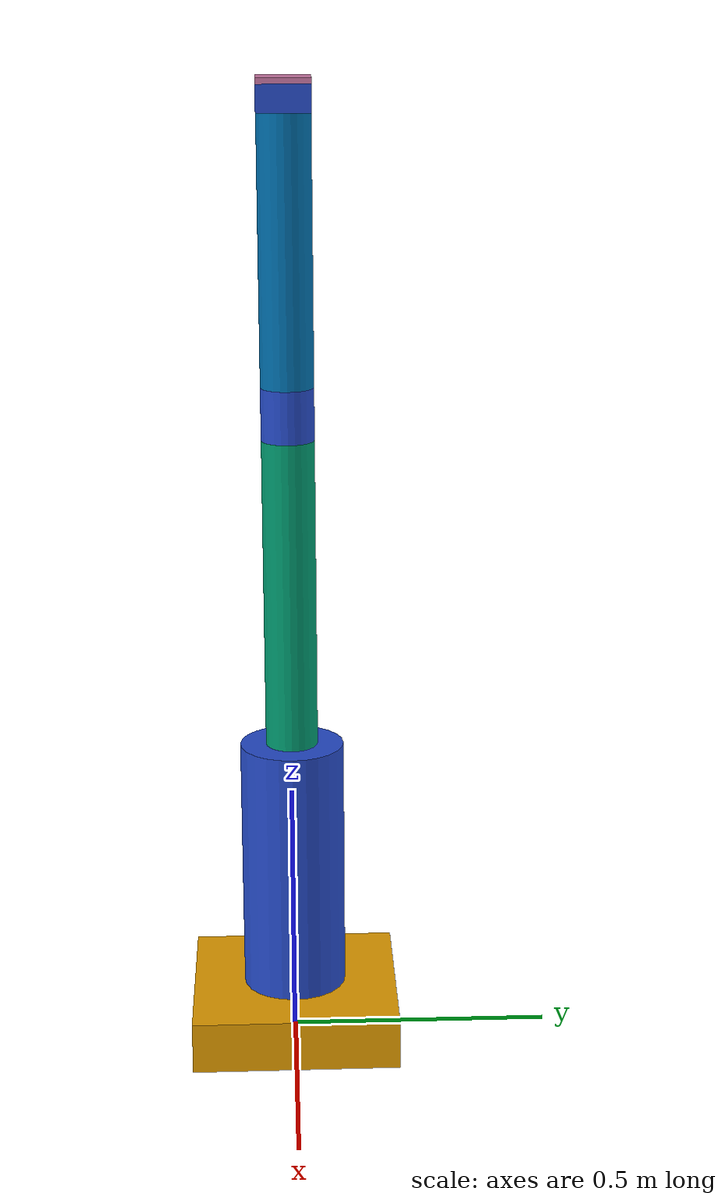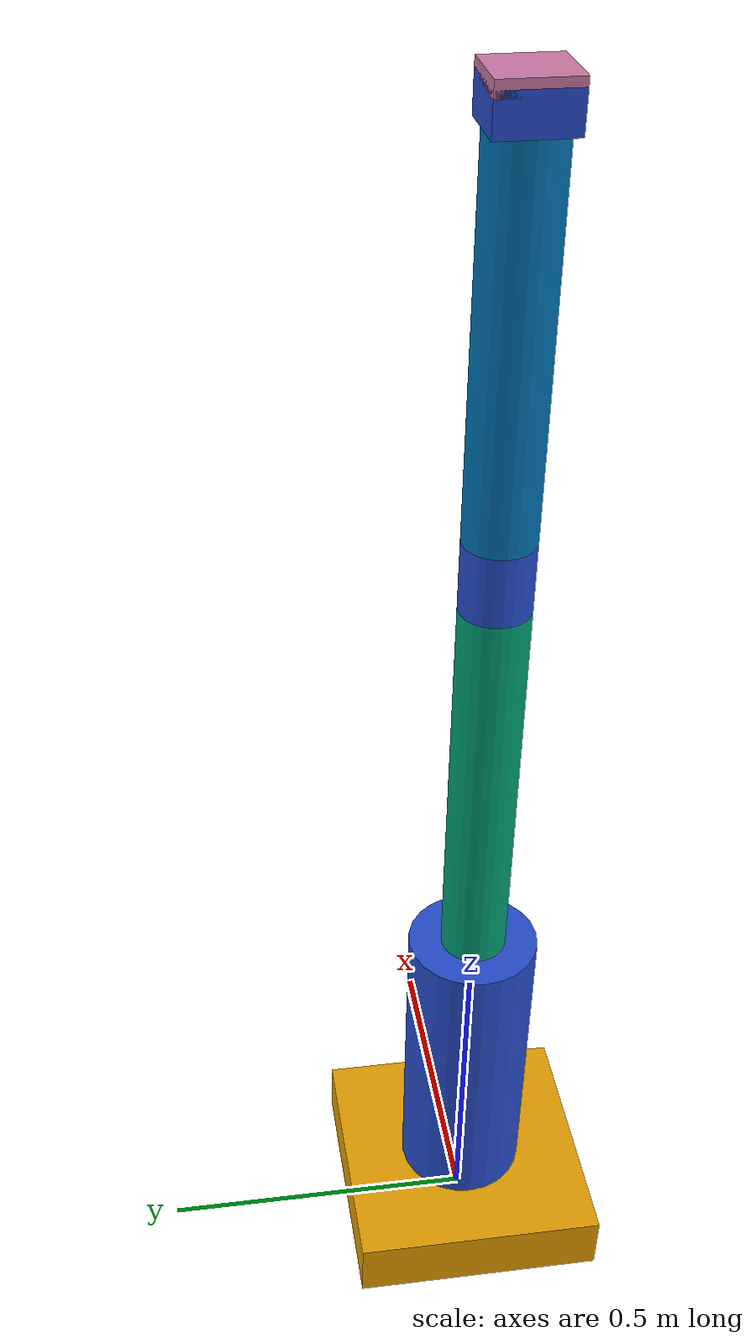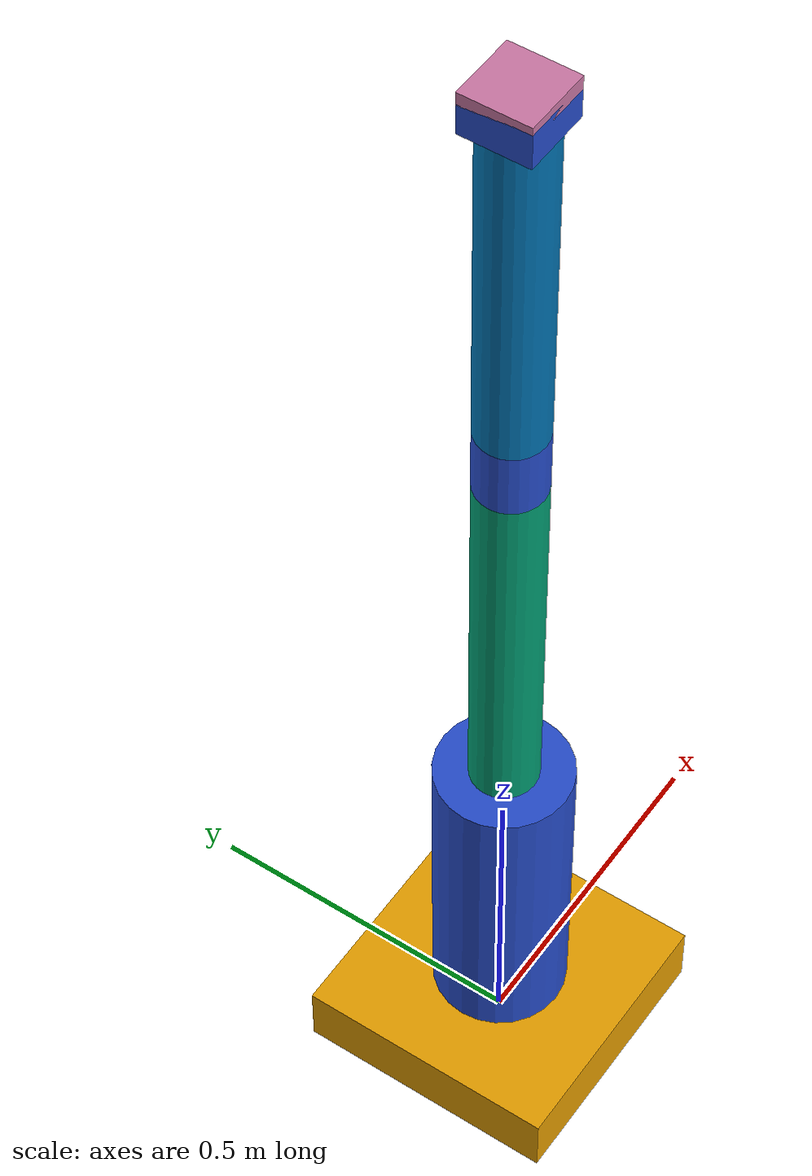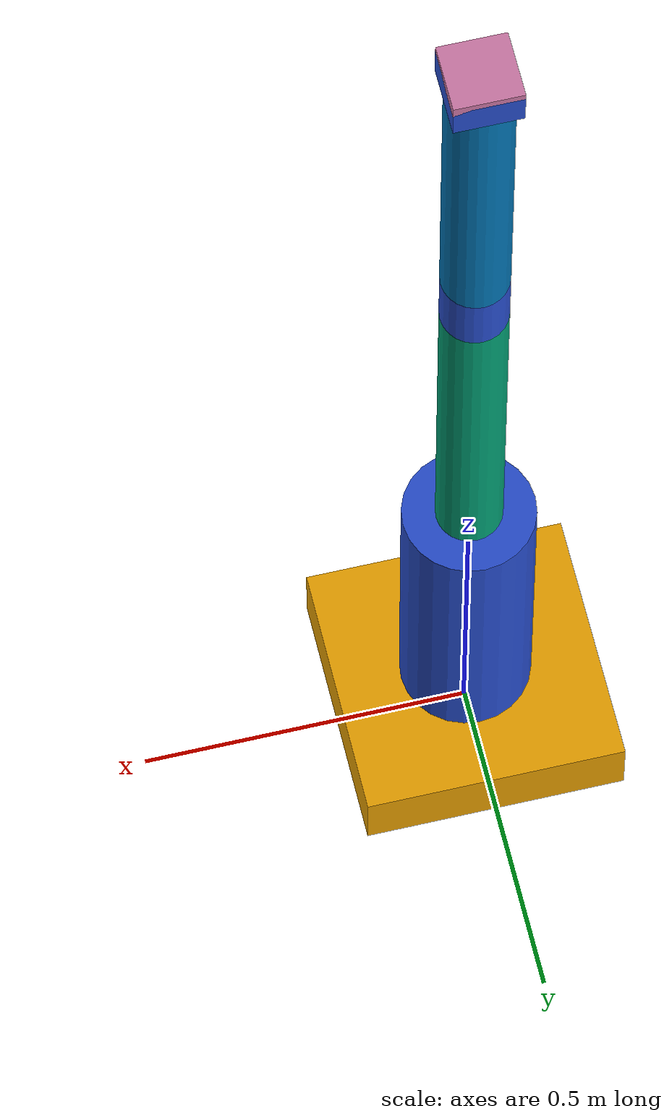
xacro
<?xml version="1.0"?>
<robot  xmlns:xacro="http://www.ros.org/wiki/xacro">

  <link name="base_link">
      <visual>
          <geometry>
              <box size="0.4 0.4 0.1"/>
          </geometry>
          <origin xyz="0.0 0.0 0.05" rpy="0.0 0.0 0.0"/>
          <material name="greg"/>
      </visual>
      <collision>
        <geometry>
             <box size="0.4 0.4 0.1"/>
        </geometry>
        <origin xyz="0.0 0.0 0.05" rpy="0.0 0.0 0.0"/>
      </collision>
  </link>

  <link name="shoulder_link">
      <visual>
          <geometry>
              <cylinder radius="0.1" length="0.5"/>
          </geometry>
          <origin xyz="0.0 0.0 0.25" rpy="0.0 0.0 0.0"/>
          <material name="blue" />
      </visual>
      <collision>
      <geometry>
              <box size="0.2 0.2 0.5"/>
          </geometry>
          <origin xyz="0.0 0.0 0.25" rpy="0.0 0.0 0.0"/>

      </collision>
  </link>

  <link name="arm_link">
      <visual>
          <geometry>
              <cylinder radius="0.05" length="0.6"/>
          </geometry>
          <origin xyz="0.0 0.0 0.3" rpy="0.0 0.0 0.0"/>
          <material name="greg" />
      </visual>
            <collision>
      <geometry>
              <box size="0.1 0.1 0.6"/>
          </geometry>
          <origin xyz="0.0 0.0 0.3" rpy="0.0 0.0 0.0"/>

      </collision>
  </link>

  <link name="elbow_link">
      <visual>
          <geometry>
              <cylinder radius="0.05" length="0.1"/>
          </geometry>
          <origin xyz="0.0 0.0 0.05" rpy="0.0 0.0 0.0"/>
          <material name="blue" />
      </visual>
            <collision>
      <geometry>
              <box size="0.1 0.1 0.1"/>
          </geometry>
          <origin xyz="0.0 0.0 0.05" rpy="0.0 0.0 0.0"/>

      </collision>
  </link>

  <link name="forearm_link">
      <visual>
          <geometry>
              <cylinder radius="0.05" length="0.5"/>
          </geometry>
          <origin xyz="0.0 0.0 0.25" rpy="0.0 0.0 0.0"/>
          <material name="greg" />
      </visual>
            <collision>
      <geometry>
              <box size="0.1 0.1 0.5"/>
          </geometry>
          <origin xyz="0.0 0.0 0.25" rpy="0.0 0.0 0.0"/>

      </collision>
  </link>

  <link name="wrist_link">
      <visual>
          <geometry>
              <box size="0.1 0.1 0.05"/>
          </geometry>
          <origin xyz="0.0 0.0 0.025" rpy="0.0 0.0 0.0"/>
          <material name="blue" />
      </visual>
            <collision>
      <geometry>
              <box size="0.1 0.1 0.05"/>
          </geometry>
          <origin xyz="0.0 0.0 0.025" rpy="0.0 0.0 0.0"/>

      </collision>
  </link>

  <link name="hand_link">
      <visual>
          <geometry>
              <box size="0.1 0.1 0.02"/>
          </geometry>
          <origin xyz="0.0 0.0 0.001" rpy="0.0 0.0 0.0"/>
          <material name="greg" />
      </visual>
            <collision>
      <geometry>
              <box size="0.1 0.1 0.02"/>
          </geometry>
          <origin xyz="0.0 0.0 0.001" rpy="0.0 0.0 0.0"/>

      </collision>
  </link>

  <link name="tool_link"/>

  <joint name="joint1" type="revolute">
      <parent link="base_link"/>
      <child link="shoulder_link"/>
      <origin xyz="0.0 0.0 0.1" rpy="0.0 0.0 0.0"/>
      <axis xyz="0 0 1"/>
      <limit lower="-3.14" upper="3.14" effort="1000" velocity="1.0"/>
  </joint>

  <joint name="joint_2" type="revolute">
      <parent link="shoulder_link"/>
      <child link="arm_link"/>
      <origin xyz="0.0 0.0 0.5" rpy="0.0 0.0 0.0"/>
      <axis xyz="0 1 0"/>
      <limit lower="0" upper="2.5" effort="1000" velocity="1.0"/>
  </joint>

  <joint name="joint_3" type="revolute">
      <parent link="arm_link"/>
      <child link="elbow_link"/>
      <origin xyz="0.0 0.0 0.6" rpy="0.0 0.0 0.0"/>
      <axis xyz="0 1 0"/>
      <limit lower="0" upper="2.5" effort="1000" velocity="1.0"/>
  </joint>

  <joint name="joint_4" type="revolute">
      <parent link="elbow_link"/>
      <child link="forearm_link"/>
      <origin xyz="0.0 0.0 0.1" rpy="0.0 0.0 0.0"/>
      <axis xyz="0 0 1"/>
      <limit lower="-3.14" upper="3.14" effort="1000" velocity="1.0"/>
  </joint>

  <joint name="joint_5" type="revolute">
      <parent link="forearm_link"/>
      <child link="wrist_link"/>
      <origin xyz="0.0 0.0 0.5" rpy="0.0 0.0 0.0"/>
      <axis xyz="0 1 0"/>
      <limit lower="-1.57" upper="1.57" effort="1000" velocity="1.0"/>
  </joint>

  <joint name="joint_6" type="continuous">
      <parent link="wrist_link"/>
      <child link="hand_link"/>
      <origin xyz="0.0 0.0 0.05" rpy="0.0 0.0 0.0"/>
      <axis xyz="0 0 1"/>
  </joint>

  <joint name="hand_tool_joint" type="fixed">
      <parent link="hand_link"/>
      <child link="tool_link"/>
      <origin xyz="0.0 0.0 0.02" rpy="0.0 0.0 0.0"/>
  </joint>

</robot>
